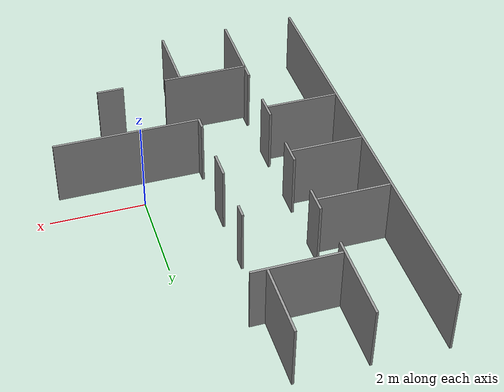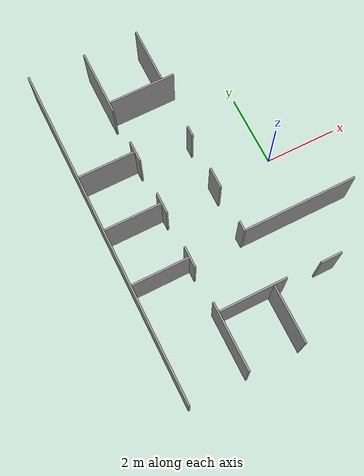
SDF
<sdf version="1.6">
 <model name="circular_corridor">
  <link name="link">
   <pose>-0 -1.6 -0.05 0 -0 0</pose>
   <visual name="visual">
    <geometry><box><size>3.2 0.05 1.5</size></box></geometry>
    <material>
     <script><name>Gazebo/Grey</name><uri>file://media/materials/scripts/gazebo.material</uri></script>
     <shader type="vertex"><normal_map>__default__</normal_map></shader>
     <ambient>0.3 0.3 0.3 1</ambient>
     <diffuse>0.7 0.7 0.7 1</diffuse>
     <specular>0.01 0.01 0.01 1</specular>
     <emissive>0 0 0 1</emissive>
    </material>
   </visual>
   <collision name="collision">
    <geometry><box><size>3.2 0.05 1.5</size></box></geometry>
    <surface>
     <friction>
      <ode><mu>1</mu><mu2>1</mu2><fdir1>0 0 0</fdir1><slip1>0</slip1><slip2>0</slip2></ode>
      <torsional>
       <coefficient>1</coefficient>
       <patch_radius>0</patch_radius>
       <surface_radius>0</surface_radius>
       <use_patch_radius>1</use_patch_radius>
       <ode><slip>0</slip></ode>
      </torsional>
     </friction>
     <bounce><restitution_coefficient>0</restitution_coefficient><threshold>1e+06</threshold></bounce>
     <contact>
      <collide_without_contact>0</collide_without_contact>
      <collide_without_contact_bitmask>1</collide_without_contact_bitmask>
      <collide_bitmask>1</collide_bitmask>
      <ode>
       <soft_cfm>0</soft_cfm>
       <soft_erp>0.2</soft_erp>
       <kp>1e+13</kp>
       <kd>1</kd>
       <max_vel>0.01</max_vel>
       <min_depth>0</min_depth>
      </ode>
      <bullet>
       <split_impulse>1</split_impulse>
       <split_impulse_penetration_threshold>-0.01</split_impulse_penetration_threshold>
       <soft_cfm>0</soft_cfm>
       <soft_erp>0.2</soft_erp>
       <kp>1e+13</kp>
       <kd>1</kd>
      </bullet>
     </contact>
    </surface>
   </collision>
  </link>
  <link name="link_0">
   <pose>-3.175 -0 -0.05 -0 -0 -1.5708</pose>
   <visual name="visual">
    <geometry><box><size>0.6 0.05 1.5</size></box></geometry>
    <material>
     <lighting>1</lighting>
     <script><uri>file://media/materials/scripts/gazebo.material</uri><name>Gazebo/Grey</name></script>
     <shader type="vertex"><normal_map>__default__</normal_map></shader>
     <ambient>0.3 0.3 0.3 1</ambient>
     <diffuse>0.7 0.7 0.7 1</diffuse>
     <specular>0.01 0.01 0.01 1</specular>
     <emissive>0 0 0 1</emissive>
    </material>
   </visual>
   <collision name="collision">
    <geometry><box><size>0.6 0.05 1.5</size></box></geometry>
    <surface>
     <friction>
      <ode><mu>1</mu><mu2>1</mu2><fdir1>0 0 0</fdir1><slip1>0</slip1><slip2>0</slip2></ode>
      <torsional>
       <coefficient>1</coefficient>
       <patch_radius>0</patch_radius>
       <surface_radius>0</surface_radius>
       <use_patch_radius>1</use_patch_radius>
       <ode><slip>0</slip></ode>
      </torsional>
     </friction>
     <bounce><restitution_coefficient>0</restitution_coefficient><threshold>1e+06</threshold></bounce>
     <contact>
      <collide_without_contact>0</collide_without_contact>
      <collide_without_contact_bitmask>1</collide_without_contact_bitmask>
      <collide_bitmask>1</collide_bitmask>
      <ode>
       <soft_cfm>0</soft_cfm>
       <soft_erp>0.2</soft_erp>
       <kp>1e+13</kp>
       <kd>1</kd>
       <max_vel>0.01</max_vel>
       <min_depth>0</min_depth>
      </ode>
      <bullet>
       <split_impulse>1</split_impulse>
       <split_impulse_penetration_threshold>-0.01</split_impulse_penetration_threshold>
       <soft_cfm>0</soft_cfm>
       <soft_erp>0.2</soft_erp>
       <kp>1e+13</kp>
       <kd>1</kd>
      </bullet>
     </contact>
    </surface>
   </collision>
  </link>
  <link name="link_0_0">
   <pose>-2.225 3.175 -0.05 -0 -0 -8e-06</pose>
   <visual name="visual">
    <geometry><box><size>1.9 0.05 1.5</size></box></geometry>
    <material>
     <lighting>1</lighting>
     <script><uri>file://media/materials/scripts/gazebo.material</uri><name>Gazebo/Grey</name></script>
     <shader type="vertex"><normal_map>__default__</normal_map></shader>
     <ambient>0.3 0.3 0.3 1</ambient>
     <diffuse>0.7 0.7 0.7 1</diffuse>
     <specular>0.01 0.01 0.01 1</specular>
     <emissive>0 0 0 1</emissive>
    </material>
   </visual>
   <collision name="collision">
    <geometry><box><size>1.9 0.05 1.5</size></box></geometry>
    <surface>
     <friction>
      <ode><mu>1</mu><mu2>1</mu2><fdir1>0 0 0</fdir1><slip1>0</slip1><slip2>0</slip2></ode>
      <torsional>
       <coefficient>1</coefficient>
       <patch_radius>0</patch_radius>
       <surface_radius>0</surface_radius>
       <use_patch_radius>1</use_patch_radius>
       <ode><slip>0</slip></ode>
      </torsional>
     </friction>
     <bounce><restitution_coefficient>0</restitution_coefficient><threshold>1e+06</threshold></bounce>
     <contact>
      <collide_without_contact>0</collide_without_contact>
      <collide_without_contact_bitmask>1</collide_without_contact_bitmask>
      <collide_bitmask>1</collide_bitmask>
      <ode>
       <soft_cfm>0</soft_cfm>
       <soft_erp>0.2</soft_erp>
       <kp>1e+13</kp>
       <kd>1</kd>
       <max_vel>0.01</max_vel>
       <min_depth>0</min_depth>
      </ode>
      <bullet>
       <split_impulse>1</split_impulse>
       <split_impulse_penetration_threshold>-0.01</split_impulse_penetration_threshold>
       <soft_cfm>0</soft_cfm>
       <soft_erp>0.2</soft_erp>
       <kp>1e+13</kp>
       <kd>1</kd>
      </bullet>
     </contact>
    </surface>
   </collision>
  </link>
  <link name="link_0_0_clone">
   <pose>-2.205 -3.175 -0.005508 -0.013849 3.8e-05 -8e-06</pose>
   <visual name="visual">
    <geometry><box><size>1.9 0.05 1.5</size></box></geometry>
    <material>
     <lighting>1</lighting>
     <script><uri>file://media/materials/scripts/gazebo.material</uri><name>Gazebo/Grey</name></script>
     <shader type="vertex"><normal_map>__default__</normal_map></shader>
     <ambient>0.3 0.3 0.3 1</ambient>
     <diffuse>0.7 0.7 0.7 1</diffuse>
     <specular>0.01 0.01 0.01 1</specular>
     <emissive>0 0 0 1</emissive>
    </material>
   </visual>
   <collision name="collision">
    <geometry><box><size>1.9 0.05 1.5</size></box></geometry>
    <surface>
     <friction>
      <ode><mu>1</mu><mu2>1</mu2><fdir1>0 0 0</fdir1><slip1>0</slip1><slip2>0</slip2></ode>
      <torsional>
       <coefficient>1</coefficient>
       <patch_radius>0</patch_radius>
       <surface_radius>0</surface_radius>
       <use_patch_radius>1</use_patch_radius>
       <ode><slip>0</slip></ode>
      </torsional>
     </friction>
     <bounce><restitution_coefficient>0</restitution_coefficient><threshold>1e+06</threshold></bounce>
     <contact>
      <collide_without_contact>0</collide_without_contact>
      <collide_without_contact_bitmask>1</collide_without_contact_bitmask>
      <collide_bitmask>1</collide_bitmask>
      <ode>
       <soft_cfm>0</soft_cfm>
       <soft_erp>0.2</soft_erp>
       <kp>1e+13</kp>
       <kd>1</kd>
       <max_vel>0.01</max_vel>
       <min_depth>0</min_depth>
      </ode>
      <bullet>
       <split_impulse>1</split_impulse>
       <split_impulse_penetration_threshold>-0.01</split_impulse_penetration_threshold>
       <soft_cfm>0</soft_cfm>
       <soft_erp>0.2</soft_erp>
       <kp>1e+13</kp>
       <kd>1</kd>
      </bullet>
     </contact>
    </surface>
   </collision>
  </link>
  <link name="link_0_0_clone_1">
   <pose>-4 -0 -0.05 0 -0 0</pose>
   <visual name="visual">
    <geometry><box><size>1.6 0.05 1.5</size></box></geometry>
    <material>
     <lighting>1</lighting>
     <script><uri>file://media/materials/scripts/gazebo.material</uri><name>Gazebo/Grey</name></script>
     <shader type="vertex"><normal_map>__default__</normal_map></shader>
     <ambient>0.3 0.3 0.3 1</ambient>
     <diffuse>0.7 0.7 0.7 1</diffuse>
     <specular>0.01 0.01 0.01 1</specular>
     <emissive>0 0 0 1</emissive>
    </material>
   </visual>
   <collision name="collision">
    <geometry><box><size>1.6 0.05 1.5</size></box></geometry>
    <surface>
     <friction>
      <ode><mu>1</mu><mu2>1</mu2><fdir1>0 0 0</fdir1><slip1>0</slip1><slip2>0</slip2></ode>
      <torsional>
       <coefficient>1</coefficient>
       <patch_radius>0</patch_radius>
       <surface_radius>0</surface_radius>
       <use_patch_radius>1</use_patch_radius>
       <ode><slip>0</slip></ode>
      </torsional>
     </friction>
     <bounce><restitution_coefficient>0</restitution_coefficient><threshold>1e+06</threshold></bounce>
     <contact>
      <collide_without_contact>0</collide_without_contact>
      <collide_without_contact_bitmask>1</collide_without_contact_bitmask>
      <collide_bitmask>1</collide_bitmask>
      <ode>
       <soft_cfm>0</soft_cfm>
       <soft_erp>0.2</soft_erp>
       <kp>1e+13</kp>
       <kd>1</kd>
       <max_vel>0.01</max_vel>
       <min_depth>0</min_depth>
      </ode>
      <bullet>
       <split_impulse>1</split_impulse>
       <split_impulse_penetration_threshold>-0.01</split_impulse_penetration_threshold>
       <soft_cfm>0</soft_cfm>
       <soft_erp>0.2</soft_erp>
       <kp>1e+13</kp>
       <kd>1</kd>
      </bullet>
     </contact>
    </surface>
   </collision>
  </link>
  <link name="link_0_0_clone_1_clone">
   <pose>-4 -1.6 -0.05 0 -0 0</pose>
   <visual name="visual">
    <geometry><box><size>1.6 0.05 1.5</size></box></geometry>
    <material>
     <lighting>1</lighting>
     <script><uri>file://media/materials/scripts/gazebo.material</uri><name>Gazebo/Grey</name></script>
     <shader type="vertex"><normal_map>__default__</normal_map></shader>
     <ambient>0.3 0.3 0.3 1</ambient>
     <diffuse>0.7 0.7 0.7 1</diffuse>
     <specular>0.01 0.01 0.01 1</specular>
     <emissive>0 0 0 1</emissive>
    </material>
   </visual>
   <collision name="collision">
    <geometry><box><size>1.6 0.05 1.5</size></box></geometry>
    <surface>
     <friction>
      <ode><mu>1</mu><mu2>1</mu2><fdir1>0 0 0</fdir1><slip1>0</slip1><slip2>0</slip2></ode>
      <torsional>
       <coefficient>1</coefficient>
       <patch_radius>0</patch_radius>
       <surface_radius>0</surface_radius>
       <use_patch_radius>1</use_patch_radius>
       <ode><slip>0</slip></ode>
      </torsional>
     </friction>
     <bounce><restitution_coefficient>0</restitution_coefficient><threshold>1e+06</threshold></bounce>
     <contact>
      <collide_without_contact>0</collide_without_contact>
      <collide_without_contact_bitmask>1</collide_without_contact_bitmask>
      <collide_bitmask>1</collide_bitmask>
      <ode>
       <soft_cfm>0</soft_cfm>
       <soft_erp>0.2</soft_erp>
       <kp>1e+13</kp>
       <kd>1</kd>
       <max_vel>0.01</max_vel>
       <min_depth>0</min_depth>
      </ode>
      <bullet>
       <split_impulse>1</split_impulse>
       <split_impulse_penetration_threshold>-0.01</split_impulse_penetration_threshold>
       <soft_cfm>0</soft_cfm>
       <soft_erp>0.2</soft_erp>
       <kp>1e+13</kp>
       <kd>1</kd>
      </bullet>
     </contact>
    </surface>
   </collision>
  </link>
  <link name="link_0_0_clone_1_clone_clone">
   <pose>-4 1.6 -0.05 0 -0 0</pose>
   <visual name="visual">
    <geometry><box><size>1.6 0.05 1.5</size></box></geometry>
    <material>
     <lighting>1</lighting>
     <script><uri>file://media/materials/scripts/gazebo.material</uri><name>Gazebo/Grey</name></script>
     <shader type="vertex"><normal_map>__default__</normal_map></shader>
     <ambient>0.3 0.3 0.3 1</ambient>
     <diffuse>0.7 0.7 0.7 1</diffuse>
     <specular>0.01 0.01 0.01 1</specular>
     <emissive>0 0 0 1</emissive>
    </material>
   </visual>
   <collision name="collision">
    <geometry><box><size>1.6 0.05 1.5</size></box></geometry>
    <surface>
     <friction>
      <ode><mu>1</mu><mu2>1</mu2><fdir1>0 0 0</fdir1><slip1>0</slip1><slip2>0</slip2></ode>
      <torsional>
       <coefficient>1</coefficient>
       <patch_radius>0</patch_radius>
       <surface_radius>0</surface_radius>
       <use_patch_radius>1</use_patch_radius>
       <ode><slip>0</slip></ode>
      </torsional>
     </friction>
     <bounce><restitution_coefficient>0</restitution_coefficient><threshold>1e+06</threshold></bounce>
     <contact>
      <collide_without_contact>0</collide_without_contact>
      <collide_without_contact_bitmask>1</collide_without_contact_bitmask>
      <collide_bitmask>1</collide_bitmask>
      <ode>
       <soft_cfm>0</soft_cfm>
       <soft_erp>0.2</soft_erp>
       <kp>1e+13</kp>
       <kd>1</kd>
       <max_vel>0.01</max_vel>
       <min_depth>0</min_depth>
      </ode>
      <bullet>
       <split_impulse>1</split_impulse>
       <split_impulse_penetration_threshold>-0.01</split_impulse_penetration_threshold>
       <soft_cfm>0</soft_cfm>
       <soft_erp>0.2</soft_erp>
       <kp>1e+13</kp>
       <kd>1</kd>
      </bullet>
     </contact>
    </surface>
   </collision>
  </link>
  <link name="link_0_clone_0">
   <pose>-3.175 1.6 -0.05 0 -0 -1.57081</pose>
   <visual name="visual">
    <geometry><box><size>0.6 0.05 1.5</size></box></geometry>
    <material>
     <lighting>1</lighting>
     <script><uri>file://media/materials/scripts/gazebo.material</uri><name>Gazebo/Grey</name></script>
     <shader type="vertex"><normal_map>__default__</normal_map></shader>
     <ambient>0.3 0.3 0.3 1</ambient>
     <diffuse>0.7 0.7 0.7 1</diffuse>
     <specular>0.01 0.01 0.01 1</specular>
     <emissive>0 0 0 1</emissive>
    </material>
   </visual>
   <collision name="collision">
    <geometry><box><size>0.6 0.05 1.5</size></box></geometry>
    <surface>
     <friction>
      <ode><mu>1</mu><mu2>1</mu2><fdir1>0 0 0</fdir1><slip1>0</slip1><slip2>0</slip2></ode>
      <torsional>
       <coefficient>1</coefficient>
       <patch_radius>0</patch_radius>
       <surface_radius>0</surface_radius>
       <use_patch_radius>1</use_patch_radius>
       <ode><slip>0</slip></ode>
      </torsional>
     </friction>
     <bounce><restitution_coefficient>0</restitution_coefficient><threshold>1e+06</threshold></bounce>
     <contact>
      <collide_without_contact>0</collide_without_contact>
      <collide_without_contact_bitmask>1</collide_without_contact_bitmask>
      <collide_bitmask>1</collide_bitmask>
      <ode>
       <soft_cfm>0</soft_cfm>
       <soft_erp>0.2</soft_erp>
       <kp>1e+13</kp>
       <kd>1</kd>
       <max_vel>0.01</max_vel>
       <min_depth>0</min_depth>
      </ode>
      <bullet>
       <split_impulse>1</split_impulse>
       <split_impulse_penetration_threshold>-0.01</split_impulse_penetration_threshold>
       <soft_cfm>0</soft_cfm>
       <soft_erp>0.2</soft_erp>
       <kp>1e+13</kp>
       <kd>1</kd>
      </bullet>
     </contact>
    </surface>
   </collision>
  </link>
  <link name="link_0_clone_0_clone">
   <pose>-3.2 3.85 -0.05 -0.000127 -0.013839 -1.57081</pose>
   <visual name="visual">
    <geometry><box><size>1.9 0.05 1.5</size></box></geometry>
    <material>
     <lighting>1</lighting>
     <script><uri>file://media/materials/scripts/gazebo.material</uri><name>Gazebo/Grey</name></script>
     <shader type="vertex"><normal_map>__default__</normal_map></shader>
     <ambient>0.3 0.3 0.3 1</ambient>
     <diffuse>0.7 0.7 0.7 1</diffuse>
     <specular>0.01 0.01 0.01 1</specular>
     <emissive>0 0 0 1</emissive>
    </material>
   </visual>
   <collision name="collision">
    <geometry><box><size>1.9 0.05 1.5</size></box></geometry>
    <surface>
     <friction>
      <ode><mu>1</mu><mu2>1</mu2><fdir1>0 0 0</fdir1><slip1>0</slip1><slip2>0</slip2></ode>
      <torsional>
       <coefficient>1</coefficient>
       <patch_radius>0</patch_radius>
       <surface_radius>0</surface_radius>
       <use_patch_radius>1</use_patch_radius>
       <ode><slip>0</slip></ode>
      </torsional>
     </friction>
     <bounce><restitution_coefficient>0</restitution_coefficient><threshold>1e+06</threshold></bounce>
     <contact>
      <collide_without_contact>0</collide_without_contact>
      <collide_without_contact_bitmask>1</collide_without_contact_bitmask>
      <collide_bitmask>1</collide_bitmask>
      <ode>
       <soft_cfm>0</soft_cfm>
       <soft_erp>0.2</soft_erp>
       <kp>1e+13</kp>
       <kd>1</kd>
       <max_vel>0.01</max_vel>
       <min_depth>0</min_depth>
      </ode>
      <bullet>
       <split_impulse>1</split_impulse>
       <split_impulse_penetration_threshold>-0.01</split_impulse_penetration_threshold>
       <soft_cfm>0</soft_cfm>
       <soft_erp>0.2</soft_erp>
       <kp>1e+13</kp>
       <kd>1</kd>
      </bullet>
     </contact>
    </surface>
   </collision>
  </link>
  <link name="link_0_clone_0_clone_clone">
   <pose>-3.175 -3.85 -0.05 -0.000166 -0.027688 -1.57078</pose>
   <visual name="visual">
    <geometry><box><size>1.9 0.05 1.5</size></box></geometry>
    <material>
     <lighting>1</lighting>
     <script><uri>file://media/materials/scripts/gazebo.material</uri><name>Gazebo/Grey</name></script>
     <shader type="vertex"><normal_map>__default__</normal_map></shader>
     <ambient>0.3 0.3 0.3 1</ambient>
     <diffuse>0.7 0.7 0.7 1</diffuse>
     <specular>0.01 0.01 0.01 1</specular>
     <emissive>0 0 0 1</emissive>
    </material>
   </visual>
   <collision name="collision">
    <geometry><box><size>1.9 0.05 1.5</size></box></geometry>
    <surface>
     <friction>
      <ode><mu>1</mu><mu2>1</mu2><fdir1>0 0 0</fdir1><slip1>0</slip1><slip2>0</slip2></ode>
      <torsional>
       <coefficient>1</coefficient>
       <patch_radius>0</patch_radius>
       <surface_radius>0</surface_radius>
       <use_patch_radius>1</use_patch_radius>
       <ode><slip>0</slip></ode>
      </torsional>
     </friction>
     <bounce><restitution_coefficient>0</restitution_coefficient><threshold>1e+06</threshold></bounce>
     <contact>
      <collide_without_contact>0</collide_without_contact>
      <collide_without_contact_bitmask>1</collide_without_contact_bitmask>
      <collide_bitmask>1</collide_bitmask>
      <ode>
       <soft_cfm>0</soft_cfm>
       <soft_erp>0.2</soft_erp>
       <kp>1e+13</kp>
       <kd>1</kd>
       <max_vel>0.01</max_vel>
       <min_depth>0</min_depth>
      </ode>
      <bullet>
       <split_impulse>1</split_impulse>
       <split_impulse_penetration_threshold>-0.01</split_impulse_penetration_threshold>
       <soft_cfm>0</soft_cfm>
       <soft_erp>0.2</soft_erp>
       <kp>1e+13</kp>
       <kd>1</kd>
      </bullet>
     </contact>
    </surface>
   </collision>
  </link>
  <link name="link_0_clone_1">
   <pose>-3.175 -1.6 -0.05 0 -0 -1.57081</pose>
   <visual name="visual">
    <geometry><box><size>0.6 0.05 1.5</size></box></geometry>
    <material>
     <lighting>1</lighting>
     <script><uri>file://media/materials/scripts/gazebo.material</uri><name>Gazebo/Grey</name></script>
     <shader type="vertex"><normal_map>__default__</normal_map></shader>
     <ambient>0.3 0.3 0.3 1</ambient>
     <diffuse>0.7 0.7 0.7 1</diffuse>
     <specular>0.01 0.01 0.01 1</specular>
     <emissive>0 0 0 1</emissive>
    </material>
   </visual>
   <collision name="collision">
    <geometry><box><size>0.6 0.05 1.5</size></box></geometry>
    <surface>
     <friction>
      <ode><mu>1</mu><mu2>1</mu2><fdir1>0 0 0</fdir1><slip1>0</slip1><slip2>0</slip2></ode>
      <torsional>
       <coefficient>1</coefficient>
       <patch_radius>0</patch_radius>
       <surface_radius>0</surface_radius>
       <use_patch_radius>1</use_patch_radius>
       <ode><slip>0</slip></ode>
      </torsional>
     </friction>
     <bounce><restitution_coefficient>0</restitution_coefficient><threshold>1e+06</threshold></bounce>
     <contact>
      <collide_without_contact>0</collide_without_contact>
      <collide_without_contact_bitmask>1</collide_without_contact_bitmask>
      <collide_bitmask>1</collide_bitmask>
      <ode>
       <soft_cfm>0</soft_cfm>
       <soft_erp>0.2</soft_erp>
       <kp>1e+13</kp>
       <kd>1</kd>
       <max_vel>0.01</max_vel>
       <min_depth>0</min_depth>
      </ode>
      <bullet>
       <split_impulse>1</split_impulse>
       <split_impulse_penetration_threshold>-0.01</split_impulse_penetration_threshold>
       <soft_cfm>0</soft_cfm>
       <soft_erp>0.2</soft_erp>
       <kp>1e+13</kp>
       <kd>1</kd>
      </bullet>
     </contact>
    </surface>
   </collision>
  </link>
  <link name="link_0_clone_2">
   <pose>-0 -3.2 -0.05 1e-05 8.9e-05 -1.4e-05</pose>
   <visual name="visual">
    <geometry><box><size>0.6 0.05 1.5</size></box></geometry>
    <material>
     <lighting>1</lighting>
     <script><uri>file://media/materials/scripts/gazebo.material</uri><name>Gazebo/Grey</name></script>
     <shader type="vertex"><normal_map>__default__</normal_map></shader>
     <ambient>0.3 0.3 0.3 1</ambient>
     <diffuse>0.7 0.7 0.7 1</diffuse>
     <specular>0.01 0.01 0.01 1</specular>
     <emissive>0 0 0 1</emissive>
    </material>
   </visual>
   <collision name="collision">
    <geometry><box><size>0.6 0.05 1.5</size></box></geometry>
    <surface>
     <friction>
      <ode><mu>1</mu><mu2>1</mu2><fdir1>0 0 0</fdir1><slip1>0</slip1><slip2>0</slip2></ode>
      <torsional>
       <coefficient>1</coefficient>
       <patch_radius>0</patch_radius>
       <surface_radius>0</surface_radius>
       <use_patch_radius>1</use_patch_radius>
       <ode><slip>0</slip></ode>
      </torsional>
     </friction>
     <bounce><restitution_coefficient>0</restitution_coefficient><threshold>1e+06</threshold></bounce>
     <contact>
      <collide_without_contact>0</collide_without_contact>
      <collide_without_contact_bitmask>1</collide_without_contact_bitmask>
      <collide_bitmask>1</collide_bitmask>
      <ode>
       <soft_cfm>0</soft_cfm>
       <soft_erp>0.2</soft_erp>
       <kp>1e+13</kp>
       <kd>1</kd>
       <max_vel>0.01</max_vel>
       <min_depth>0</min_depth>
      </ode>
      <bullet>
       <split_impulse>1</split_impulse>
       <split_impulse_penetration_threshold>-0.01</split_impulse_penetration_threshold>
       <soft_cfm>0</soft_cfm>
       <soft_erp>0.2</soft_erp>
       <kp>1e+13</kp>
       <kd>1</kd>
      </bullet>
     </contact>
    </surface>
   </collision>
  </link>
  <link name="link_clone_clone_0_clone_clone">
   <pose>-4.825 0 -0.05 0 -0 1.5708</pose>
   <visual name="visual">
    <geometry><box><size>9.7 0.05 1.5</size></box></geometry>
    <material>
     <script><name>Gazebo/Grey</name><uri>file://media/materials/scripts/gazebo.material</uri></script>
     <shader type="vertex"><normal_map>__default__</normal_map></shader>
     <ambient>0.3 0.3 0.3 1</ambient>
     <diffuse>0.7 0.7 0.7 1</diffuse>
     <specular>0.01 0.01 0.01 1</specular>
     <emissive>0 0 0 1</emissive>
    </material>
   </visual>
   <collision name="collision">
    <geometry><box><size>9.7 0.05 1.5</size></box></geometry>
    <surface>
     <friction>
      <ode><mu>1</mu><mu2>1</mu2><fdir1>0 0 0</fdir1><slip1>0</slip1><slip2>0</slip2></ode>
      <torsional>
       <coefficient>1</coefficient>
       <patch_radius>0</patch_radius>
       <surface_radius>0</surface_radius>
       <use_patch_radius>1</use_patch_radius>
       <ode><slip>0</slip></ode>
      </torsional>
     </friction>
     <bounce><restitution_coefficient>0</restitution_coefficient><threshold>1e+06</threshold></bounce>
     <contact>
      <collide_without_contact>0</collide_without_contact>
      <collide_without_contact_bitmask>1</collide_without_contact_bitmask>
      <collide_bitmask>1</collide_bitmask>
      <ode>
       <soft_cfm>0</soft_cfm>
       <soft_erp>0.2</soft_erp>
       <kp>1e+13</kp>
       <kd>1</kd>
       <max_vel>0.01</max_vel>
       <min_depth>0</min_depth>
      </ode>
      <bullet>
       <split_impulse>1</split_impulse>
       <split_impulse_penetration_threshold>-0.01</split_impulse_penetration_threshold>
       <soft_cfm>0</soft_cfm>
       <soft_erp>0.2</soft_erp>
       <kp>1e+13</kp>
       <kd>1</kd>
      </bullet>
     </contact>
    </surface>
   </collision>
  </link>
  <link name="link_clone_clone_clone">
   <pose>-1.625 -0 -0.05 0 3e-05 -1.5708</pose>
   <visual name="visual">
    <geometry><box><size>0.6 0.05 1.5</size></box></geometry>
    <material>
     <script><name>Gazebo/Grey</name><uri>file://media/materials/scripts/gazebo.material</uri></script>
     <shader type="vertex"><normal_map>__default__</normal_map></shader>
     <ambient>0.3 0.3 0.3 1</ambient>
     <diffuse>0.7 0.7 0.7 1</diffuse>
     <specular>0.01 0.01 0.01 1</specular>
     <emissive>0 0 0 1</emissive>
    </material>
   </visual>
   <collision name="collision">
    <geometry><box><size>0.6 0.05 1.5</size></box></geometry>
    <surface>
     <friction>
      <ode><mu>1</mu><mu2>1</mu2><fdir1>0 0 0</fdir1><slip1>0</slip1><slip2>0</slip2></ode>
      <torsional>
       <coefficient>1</coefficient>
       <patch_radius>0</patch_radius>
       <surface_radius>0</surface_radius>
       <use_patch_radius>1</use_patch_radius>
       <ode><slip>0</slip></ode>
      </torsional>
     </friction>
     <bounce><restitution_coefficient>0</restitution_coefficient><threshold>1e+06</threshold></bounce>
     <contact>
      <collide_without_contact>0</collide_without_contact>
      <collide_without_contact_bitmask>1</collide_without_contact_bitmask>
      <collide_bitmask>1</collide_bitmask>
      <ode>
       <soft_cfm>0</soft_cfm>
       <soft_erp>0.2</soft_erp>
       <kp>1e+13</kp>
       <kd>1</kd>
       <max_vel>0.01</max_vel>
       <min_depth>0</min_depth>
      </ode>
      <bullet>
       <split_impulse>1</split_impulse>
       <split_impulse_penetration_threshold>-0.01</split_impulse_penetration_threshold>
       <soft_cfm>0</soft_cfm>
       <soft_erp>0.2</soft_erp>
       <kp>1e+13</kp>
       <kd>1</kd>
      </bullet>
     </contact>
    </surface>
   </collision>
  </link>
  <link name="link_clone_clone_clone_clone">
   <pose>-1.625 1.475 -0.05 0 4e-05 -1.5708</pose>
   <visual name="visual">
    <geometry><box><size>0.3 0.05 1.5</size></box></geometry>
    <material>
     <script><name>Gazebo/Grey</name><uri>file://media/materials/scripts/gazebo.material</uri></script>
     <shader type="vertex"><normal_map>__default__</normal_map></shader>
     <ambient>0.3 0.3 0.3 1</ambient>
     <diffuse>0.7 0.7 0.7 1</diffuse>
     <specular>0.01 0.01 0.01 1</specular>
     <emissive>0 0 0 1</emissive>
    </material>
   </visual>
   <collision name="collision">
    <geometry><box><size>0.3 0.05 1.5</size></box></geometry>
    <surface>
     <friction>
      <ode><mu>1</mu><mu2>1</mu2><fdir1>0 0 0</fdir1><slip1>0</slip1><slip2>0</slip2></ode>
      <torsional>
       <coefficient>1</coefficient>
       <patch_radius>0</patch_radius>
       <surface_radius>0</surface_radius>
       <use_patch_radius>1</use_patch_radius>
       <ode><slip>0</slip></ode>
      </torsional>
     </friction>
     <bounce><restitution_coefficient>0</restitution_coefficient><threshold>1e+06</threshold></bounce>
     <contact>
      <collide_without_contact>0</collide_without_contact>
      <collide_without_contact_bitmask>1</collide_without_contact_bitmask>
      <collide_bitmask>1</collide_bitmask>
      <ode>
       <soft_cfm>0</soft_cfm>
       <soft_erp>0.2</soft_erp>
       <kp>1e+13</kp>
       <kd>1</kd>
       <max_vel>0.01</max_vel>
       <min_depth>0</min_depth>
      </ode>
      <bullet>
       <split_impulse>1</split_impulse>
       <split_impulse_penetration_threshold>-0.01</split_impulse_penetration_threshold>
       <soft_cfm>0</soft_cfm>
       <soft_erp>0.2</soft_erp>
       <kp>1e+13</kp>
       <kd>1</kd>
      </bullet>
     </contact>
    </surface>
   </collision>
  </link>
  <link name="link_clone_clone_clone_clone_0">
   <pose>-1.625 -1.475 -0.05 0 4e-05 -1.5708</pose>
   <visual name="visual">
    <geometry><box><size>0.3 0.05 1.5</size></box></geometry>
    <material>
     <script><name>Gazebo/Grey</name><uri>file://media/materials/scripts/gazebo.material</uri></script>
     <shader type="vertex"><normal_map>__default__</normal_map></shader>
     <ambient>0.3 0.3 0.3 1</ambient>
     <diffuse>0.7 0.7 0.7 1</diffuse>
     <specular>0.01 0.01 0.01 1</specular>
     <emissive>0 0 0 1</emissive>
    </material>
   </visual>
   <collision name="collision">
    <geometry><box><size>0.3 0.05 1.5</size></box></geometry>
    <surface>
     <friction>
      <ode><mu>1</mu><mu2>1</mu2><fdir1>0 0 0</fdir1><slip1>0</slip1><slip2>0</slip2></ode>
      <torsional>
       <coefficient>1</coefficient>
       <patch_radius>0</patch_radius>
       <surface_radius>0</surface_radius>
       <use_patch_radius>1</use_patch_radius>
       <ode><slip>0</slip></ode>
      </torsional>
     </friction>
     <bounce><restitution_coefficient>0</restitution_coefficient><threshold>1e+06</threshold></bounce>
     <contact>
      <collide_without_contact>0</collide_without_contact>
      <collide_without_contact_bitmask>1</collide_without_contact_bitmask>
      <collide_bitmask>1</collide_bitmask>
      <ode>
       <soft_cfm>0</soft_cfm>
       <soft_erp>0.2</soft_erp>
       <kp>1e+13</kp>
       <kd>1</kd>
       <max_vel>0.01</max_vel>
       <min_depth>0</min_depth>
      </ode>
      <bullet>
       <split_impulse>1</split_impulse>
       <split_impulse_penetration_threshold>-0.01</split_impulse_penetration_threshold>
       <soft_cfm>0</soft_cfm>
       <soft_erp>0.2</soft_erp>
       <kp>1e+13</kp>
       <kd>1</kd>
      </bullet>
     </contact>
    </surface>
   </collision>
  </link>
  <link name="link_clone_clone_clone_clone_3">
   <pose>-1.625 4 -0.05 -3.8e-05 -0.013819 -1.57089</pose>
   <visual name="visual">
    <geometry><box><size>1.6 0.05 1.5</size></box></geometry>
    <material>
     <script><name>Gazebo/Grey</name><uri>file://media/materials/scripts/gazebo.material</uri></script>
     <shader type="vertex"><normal_map>__default__</normal_map></shader>
     <ambient>0.3 0.3 0.3 1</ambient>
     <diffuse>0.7 0.7 0.7 1</diffuse>
     <specular>0.01 0.01 0.01 1</specular>
     <emissive>0 0 0 1</emissive>
    </material>
   </visual>
   <collision name="collision">
    <geometry><box><size>1.6 0.05 1.5</size></box></geometry>
    <surface>
     <friction>
      <ode><mu>1</mu><mu2>1</mu2><fdir1>0 0 0</fdir1><slip1>0</slip1><slip2>0</slip2></ode>
      <torsional>
       <coefficient>1</coefficient>
       <patch_radius>0</patch_radius>
       <surface_radius>0</surface_radius>
       <use_patch_radius>1</use_patch_radius>
       <ode><slip>0</slip></ode>
      </torsional>
     </friction>
     <bounce><restitution_coefficient>0</restitution_coefficient><threshold>1e+06</threshold></bounce>
     <contact>
      <collide_without_contact>0</collide_without_contact>
      <collide_without_contact_bitmask>1</collide_without_contact_bitmask>
      <collide_bitmask>1</collide_bitmask>
      <ode>
       <soft_cfm>0</soft_cfm>
       <soft_erp>0.2</soft_erp>
       <kp>1e+13</kp>
       <kd>1</kd>
       <max_vel>0.01</max_vel>
       <min_depth>0</min_depth>
      </ode>
      <bullet>
       <split_impulse>1</split_impulse>
       <split_impulse_penetration_threshold>-0.01</split_impulse_penetration_threshold>
       <soft_cfm>0</soft_cfm>
       <soft_erp>0.2</soft_erp>
       <kp>1e+13</kp>
       <kd>1</kd>
      </bullet>
     </contact>
    </surface>
   </collision>
  </link>
  <link name="link_clone_clone_clone_clone_3_clone_1">
   <pose>-1.625 -4 -0.05 -0 -0 -1.57079</pose>
   <visual name="visual">
    <geometry><box><size>1.6 0.05 1.5</size></box></geometry>
    <material>
     <script><name>Gazebo/Grey</name><uri>file://media/materials/scripts/gazebo.material</uri></script>
     <shader type="vertex"><normal_map>__default__</normal_map></shader>
     <ambient>0.3 0.3 0.3 1</ambient>
     <diffuse>0.7 0.7 0.7 1</diffuse>
     <specular>0.01 0.01 0.01 1</specular>
     <emissive>0 0 0 1</emissive>
    </material>
   </visual>
   <collision name="collision">
    <geometry><box><size>1.6 0.05 1.5</size></box></geometry>
    <surface>
     <friction>
      <ode><mu>1</mu><mu2>1</mu2><fdir1>0 0 0</fdir1><slip1>0</slip1><slip2>0</slip2></ode>
      <torsional>
       <coefficient>1</coefficient>
       <patch_radius>0</patch_radius>
       <surface_radius>0</surface_radius>
       <use_patch_radius>1</use_patch_radius>
       <ode><slip>0</slip></ode>
      </torsional>
     </friction>
     <bounce><restitution_coefficient>0</restitution_coefficient><threshold>1e+06</threshold></bounce>
     <contact>
      <collide_without_contact>0</collide_without_contact>
      <collide_without_contact_bitmask>1</collide_without_contact_bitmask>
      <collide_bitmask>1</collide_bitmask>
      <ode>
       <soft_cfm>0</soft_cfm>
       <soft_erp>0.2</soft_erp>
       <kp>1e+13</kp>
       <kd>1</kd>
       <max_vel>0.01</max_vel>
       <min_depth>0</min_depth>
      </ode>
      <bullet>
       <split_impulse>1</split_impulse>
       <split_impulse_penetration_threshold>-0.01</split_impulse_penetration_threshold>
       <soft_cfm>0</soft_cfm>
       <soft_erp>0.2</soft_erp>
       <kp>1e+13</kp>
       <kd>1</kd>
      </bullet>
     </contact>
    </surface>
   </collision>
  </link>
  <static>1</static>
  <allow_auto_disable>0</allow_auto_disable>
 </model>
</sdf>
